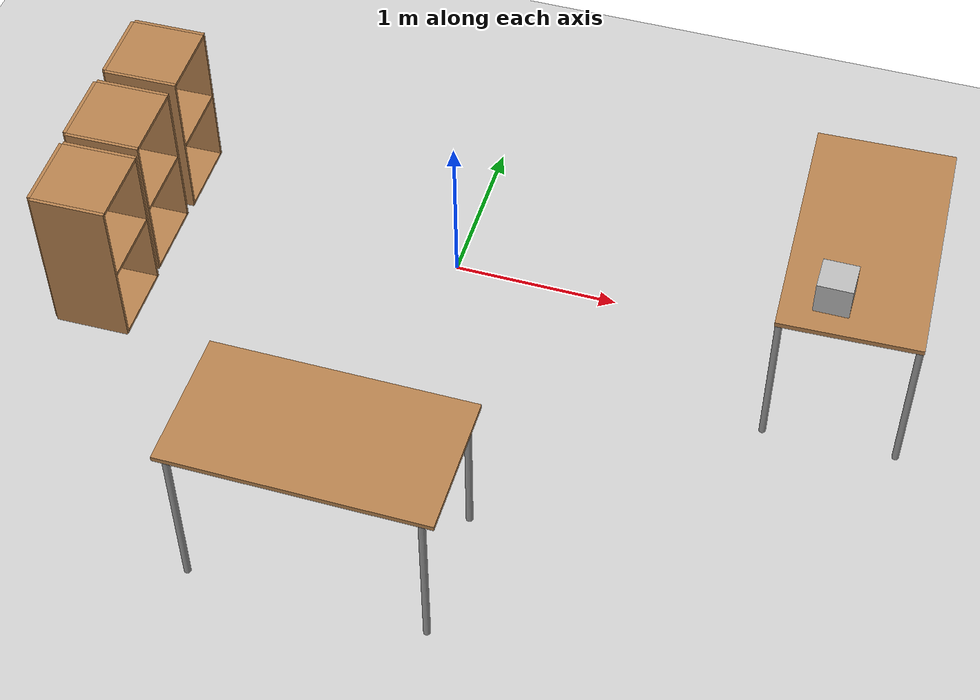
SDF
<sdf version="1.7">
 <world name="default">
  <light name="sun" type="directional">
   <pose>0 0 10 0 -0 0</pose>
   <diffuse>0.8 0.8 0.8 1</diffuse>
   <specular>0.2 0.2 0.2 1</specular>
   <attenuation>
    <range>1000</range>
    <constant>0.9</constant>
    <linear>0.01</linear>
    <quadratic>0.001</quadratic>
   </attenuation>
   <direction>-0.5 0.1 -0.9</direction>
   <spot><inner_angle>0</inner_angle><outer_angle>0</outer_angle><falloff>0</falloff></spot>
  </light>
  <model name="ground_plane">
   <static>1</static>
   <link name="link">
    <collision name="collision">
     <geometry><plane><normal>0 0 1</normal><size>100 100</size></plane></geometry>
     <surface><friction><ode><mu>100</mu><mu2>50</mu2></ode></friction></surface>
    </collision>
    <visual name="visual">
     <cast_shadows>0</cast_shadows>
     <geometry><plane><normal>0 0 1</normal><size>100 100</size></plane></geometry>
     <material>
      <script><uri>file://media/materials/scripts/gazebo.material</uri><name>Gazebo/Grey</name></script>
     </material>
    </visual>
   </link>
  </model>
  <gravity>0 0 -9.8</gravity>
  <magnetic_field>6e-06 2.3e-05 -4.2e-05</magnetic_field>
  <atmosphere type="adiabatic"/>
  <physics type="ode">
   <max_step_size>0.001</max_step_size>
   <real_time_factor>1</real_time_factor>
   <real_time_update_rate>1000</real_time_update_rate>
  </physics>
  <scene><ambient>0.4 0.4 0.4 1</ambient><background>0.7 0.7 0.7 1</background><shadows>0</shadows></scene>
  <audio><device>default</device></audio>
  <spherical_coordinates>
   <surface_model>EARTH_WGS84</surface_model>
   <latitude_deg>0</latitude_deg>
   <longitude_deg>0</longitude_deg>
   <elevation>0</elevation>
   <heading_deg>0</heading_deg>
  </spherical_coordinates>
  <model name="table">
   <static>1</static>
   <link name="link">
    <collision name="surface">
     <pose>0 0 1 0 -0 0</pose>
     <geometry><box><size>1.5 0.8 0.03</size></box></geometry>
     <surface><friction><ode><mu>0.6</mu><mu2>0.6</mu2></ode></friction></surface>
    </collision>
    <visual name="visual1">
     <pose>0 0 1 0 -0 0</pose>
     <geometry><box><size>1.5 0.8 0.03</size></box></geometry>
     <material>
      <script><uri>file://media/materials/scripts/gazebo.material</uri><name>Gazebo/Wood</name></script>
     </material>
    </visual>
    <collision name="front_left_leg">
     <pose>0.68 0.38 0.5 0 -0 0</pose>
     <geometry><cylinder><radius>0.02</radius><length>1</length></cylinder></geometry>
    </collision>
    <visual name="front_left_leg_visual">
     <pose>0.68 0.38 0.5 0 -0 0</pose>
     <geometry><cylinder><radius>0.02</radius><length>1</length></cylinder></geometry>
     <material>
      <script><uri>file://media/materials/scripts/gazebo.material</uri><name>Gazebo/Grey</name></script>
     </material>
    </visual>
    <collision name="front_right_leg">
     <pose>0.68 -0.38 0.5 0 -0 0</pose>
     <geometry><cylinder><radius>0.02</radius><length>1</length></cylinder></geometry>
    </collision>
    <visual name="front_right_leg_visual">
     <pose>0.68 -0.38 0.5 0 -0 0</pose>
     <geometry><cylinder><radius>0.02</radius><length>1</length></cylinder></geometry>
     <material>
      <script><uri>file://media/materials/scripts/gazebo.material</uri><name>Gazebo/Grey</name></script>
     </material>
    </visual>
    <collision name="back_right_leg">
     <pose>-0.68 -0.38 0.5 0 -0 0</pose>
     <geometry><cylinder><radius>0.02</radius><length>1</length></cylinder></geometry>
    </collision>
    <visual name="back_right_leg_visual">
     <pose>-0.68 -0.38 0.5 0 -0 0</pose>
     <geometry><cylinder><radius>0.02</radius><length>1</length></cylinder></geometry>
     <material>
      <script><uri>file://media/materials/scripts/gazebo.material</uri><name>Gazebo/Grey</name></script>
     </material>
    </visual>
    <collision name="back_left_leg">
     <pose>-0.68 0.38 0.5 0 -0 0</pose>
     <geometry><cylinder><radius>0.02</radius><length>1</length></cylinder></geometry>
    </collision>
    <visual name="back_left_leg_visual">
     <pose>-0.68 0.38 0.5 0 -0 0</pose>
     <geometry><cylinder><radius>0.02</radius><length>1</length></cylinder></geometry>
     <material>
      <script><uri>file://media/materials/scripts/gazebo.material</uri><name>Gazebo/Grey</name></script>
     </material>
    </visual>
   </link>
   <pose>-0.051203 -2.1438 0 0 -0 0</pose>
  </model>
  <model name="cabinet">
   <static>1</static>
   <link name="cabinet_bottom_plate">
    <inertial>
     <pose>0 0 -1 0 -0 0</pose>
     <inertia><ixx>2.05</ixx><ixy>0</ixy><ixz>0</ixz><iyy>2.05</iyy><iyz>0</iyz><izz>2.05</izz></inertia>
     <mass>25</mass>
    </inertial>
    <collision name="cabinet_bottom_plate_geom">
     <pose>0 0 0.01 0 -0 0</pose>
     <geometry><box><size>0.45 0.45 0.02</size></box></geometry>
    </collision>
    <visual name="cabinet_bottom_plate_geom_visual">
     <pose>0 0 0.01 0 -0 0</pose>
     <geometry><box><size>0.45 0.45 0.02</size></box></geometry>
     <material>
      <script><uri>file://media/materials/scripts/gazebo.material</uri><name>Gazebo/Wood</name></script>
     </material>
    </visual>
    <collision name="cabinet_bottom_plate_geom_cabinet_back_plate">
     <pose>0.235 0 0.51 0 -0 0</pose>
     <geometry><box><size>0.02 0.45 1.02</size></box></geometry>
    </collision>
    <visual name="cabinet_bottom_plate_geom_cabinet_back_plate_visual">
     <pose>0.235 0 0.51 0 -0 0</pose>
     <geometry><box><size>0.02 0.45 1.02</size></box></geometry>
     <material>
      <script><uri>file://media/materials/scripts/gazebo.material</uri><name>Gazebo/Wood</name></script>
     </material>
    </visual>
    <collision name="cabinet_bottom_plate_geom_cabinet_left_plate">
     <pose>0 0.235 0.51 0 -0 0</pose>
     <geometry><box><size>0.45 0.02 1.02</size></box></geometry>
    </collision>
    <visual name="cabinet_bottom_plate_geom_cabinet_left_plate_visual">
     <pose>0 0.235 0.51 0 -0 0</pose>
     <geometry><box><size>0.45 0.02 1.02</size></box></geometry>
     <material>
      <script><uri>file://media/materials/scripts/gazebo.material</uri><name>Gazebo/Wood</name></script>
     </material>
    </visual>
    <collision name="cabinet_bottom_plate_geom_cabinet_middle_plate">
     <pose>0 0 0.51 0 -0 0</pose>
     <geometry><box><size>0.45 0.45 0.02</size></box></geometry>
    </collision>
    <visual name="cabinet_bottom_plate_geom_cabinet_middle_plate_visual">
     <pose>0 0 0.51 0 -0 0</pose>
     <geometry><box><size>0.45 0.45 0.02</size></box></geometry>
     <material>
      <script><uri>file://media/materials/scripts/gazebo.material</uri><name>Gazebo/Wood</name></script>
     </material>
    </visual>
    <collision name="cabinet_bottom_plate_geom_cabinet_right_plate">
     <pose>0 -0.235 0.51 0 -0 0</pose>
     <geometry><box><size>0.45 0.02 1.02</size></box></geometry>
    </collision>
    <visual name="cabinet_bottom_plate_geom_cabinet_right_plate_visual">
     <pose>0 -0.235 0.51 0 -0 0</pose>
     <geometry><box><size>0.45 0.02 1.02</size></box></geometry>
     <material>
      <script><uri>file://media/materials/scripts/gazebo.material</uri><name>Gazebo/Wood</name></script>
     </material>
    </visual>
    <collision name="cabinet_bottom_plate_geom_cabinet_top_plate">
     <pose>0 0 1.01 0 -0 0</pose>
     <geometry><box><size>0.45 0.45 0.02</size></box></geometry>
    </collision>
    <visual name="cabinet_bottom_plate_geom_cabinet_top_plate_visual">
     <pose>0 0 1.01 0 -0 0</pose>
     <geometry><box><size>0.45 0.45 0.02</size></box></geometry>
     <material>
      <script><uri>file://media/materials/scripts/gazebo.material</uri><name>Gazebo/Wood</name></script>
     </material>
    </visual>
   </link>
   <pose>-1.96913 0.26782 0 0 0 -3.12336</pose>
  </model>
  <model name="table_0">
   <static>1</static>
   <link name="link">
    <collision name="surface">
     <pose>0 0 1 0 -0 0</pose>
     <geometry><box><size>1.5 0.8 0.03</size></box></geometry>
     <surface><friction><ode><mu>0.6</mu><mu2>0.6</mu2></ode></friction></surface>
    </collision>
    <visual name="visual1">
     <pose>0 0 1 0 -0 0</pose>
     <geometry><box><size>1.5 0.8 0.03</size></box></geometry>
     <material>
      <script><uri>file://media/materials/scripts/gazebo.material</uri><name>Gazebo/Wood</name></script>
     </material>
    </visual>
    <collision name="front_left_leg">
     <pose>0.68 0.38 0.5 0 -0 0</pose>
     <geometry><cylinder><radius>0.02</radius><length>1</length></cylinder></geometry>
    </collision>
    <visual name="front_left_leg_visual">
     <pose>0.68 0.38 0.5 0 -0 0</pose>
     <geometry><cylinder><radius>0.02</radius><length>1</length></cylinder></geometry>
     <material>
      <script><uri>file://media/materials/scripts/gazebo.material</uri><name>Gazebo/Grey</name></script>
     </material>
    </visual>
    <collision name="front_right_leg">
     <pose>0.68 -0.38 0.5 0 -0 0</pose>
     <geometry><cylinder><radius>0.02</radius><length>1</length></cylinder></geometry>
    </collision>
    <visual name="front_right_leg_visual">
     <pose>0.68 -0.38 0.5 0 -0 0</pose>
     <geometry><cylinder><radius>0.02</radius><length>1</length></cylinder></geometry>
     <material>
      <script><uri>file://media/materials/scripts/gazebo.material</uri><name>Gazebo/Grey</name></script>
     </material>
    </visual>
    <collision name="back_right_leg">
     <pose>-0.68 -0.38 0.5 0 -0 0</pose>
     <geometry><cylinder><radius>0.02</radius><length>1</length></cylinder></geometry>
    </collision>
    <visual name="back_right_leg_visual">
     <pose>-0.68 -0.38 0.5 0 -0 0</pose>
     <geometry><cylinder><radius>0.02</radius><length>1</length></cylinder></geometry>
     <material>
      <script><uri>file://media/materials/scripts/gazebo.material</uri><name>Gazebo/Grey</name></script>
     </material>
    </visual>
    <collision name="back_left_leg">
     <pose>-0.68 0.38 0.5 0 -0 0</pose>
     <geometry><cylinder><radius>0.02</radius><length>1</length></cylinder></geometry>
    </collision>
    <visual name="back_left_leg_visual">
     <pose>-0.68 0.38 0.5 0 -0 0</pose>
     <geometry><cylinder><radius>0.02</radius><length>1</length></cylinder></geometry>
     <material>
      <script><uri>file://media/materials/scripts/gazebo.material</uri><name>Gazebo/Grey</name></script>
     </material>
    </visual>
   </link>
   <pose>2.40504 -0.003791 0 0 -0 1.60486</pose>
  </model>
  <model name="cabinet_clone">
   <static>1</static>
   <link name="cabinet_bottom_plate">
    <inertial>
     <pose>0 0 -1 0 -0 0</pose>
     <inertia><ixx>2.05</ixx><ixy>0</ixy><ixz>0</ixz><iyy>2.05</iyy><iyz>0</iyz><izz>2.05</izz></inertia>
     <mass>25</mass>
    </inertial>
    <collision name="cabinet_bottom_plate_geom">
     <pose>0 0 0.01 0 -0 0</pose>
     <geometry><box><size>0.45 0.45 0.02</size></box></geometry>
    </collision>
    <visual name="cabinet_bottom_plate_geom_visual">
     <pose>0 0 0.01 0 -0 0</pose>
     <geometry><box><size>0.45 0.45 0.02</size></box></geometry>
     <material>
      <script><uri>file://media/materials/scripts/gazebo.material</uri><name>Gazebo/Wood</name></script>
     </material>
    </visual>
    <collision name="cabinet_bottom_plate_geom_cabinet_back_plate">
     <pose>0.235 0 0.51 0 -0 0</pose>
     <geometry><box><size>0.02 0.45 1.02</size></box></geometry>
    </collision>
    <visual name="cabinet_bottom_plate_geom_cabinet_back_plate_visual">
     <pose>0.235 0 0.51 0 -0 0</pose>
     <geometry><box><size>0.02 0.45 1.02</size></box></geometry>
     <material>
      <script><uri>file://media/materials/scripts/gazebo.material</uri><name>Gazebo/Wood</name></script>
     </material>
    </visual>
    <collision name="cabinet_bottom_plate_geom_cabinet_left_plate">
     <pose>0 0.235 0.51 0 -0 0</pose>
     <geometry><box><size>0.45 0.02 1.02</size></box></geometry>
    </collision>
    <visual name="cabinet_bottom_plate_geom_cabinet_left_plate_visual">
     <pose>0 0.235 0.51 0 -0 0</pose>
     <geometry><box><size>0.45 0.02 1.02</size></box></geometry>
     <material>
      <script><uri>file://media/materials/scripts/gazebo.material</uri><name>Gazebo/Wood</name></script>
     </material>
    </visual>
    <collision name="cabinet_bottom_plate_geom_cabinet_middle_plate">
     <pose>0 0 0.51 0 -0 0</pose>
     <geometry><box><size>0.45 0.45 0.02</size></box></geometry>
    </collision>
    <visual name="cabinet_bottom_plate_geom_cabinet_middle_plate_visual">
     <pose>0 0 0.51 0 -0 0</pose>
     <geometry><box><size>0.45 0.45 0.02</size></box></geometry>
     <material>
      <script><uri>file://media/materials/scripts/gazebo.material</uri><name>Gazebo/Wood</name></script>
     </material>
    </visual>
    <collision name="cabinet_bottom_plate_geom_cabinet_right_plate">
     <pose>0 -0.235 0.51 0 -0 0</pose>
     <geometry><box><size>0.45 0.02 1.02</size></box></geometry>
    </collision>
    <visual name="cabinet_bottom_plate_geom_cabinet_right_plate_visual">
     <pose>0 -0.235 0.51 0 -0 0</pose>
     <geometry><box><size>0.45 0.02 1.02</size></box></geometry>
     <material>
      <script><uri>file://media/materials/scripts/gazebo.material</uri><name>Gazebo/Wood</name></script>
     </material>
    </visual>
    <collision name="cabinet_bottom_plate_geom_cabinet_top_plate">
     <pose>0 0 1.01 0 -0 0</pose>
     <geometry><box><size>0.45 0.45 0.02</size></box></geometry>
    </collision>
    <visual name="cabinet_bottom_plate_geom_cabinet_top_plate_visual">
     <pose>0 0 1.01 0 -0 0</pose>
     <geometry><box><size>0.45 0.45 0.02</size></box></geometry>
     <material>
      <script><uri>file://media/materials/scripts/gazebo.material</uri><name>Gazebo/Wood</name></script>
     </material>
    </visual>
   </link>
   <pose>-1.96864 -0.292581 0 0 0 -3.12336</pose>
  </model>
  <model name="cabinet_clone_0">
   <static>1</static>
   <link name="cabinet_bottom_plate">
    <inertial>
     <pose>0 0 -1 0 -0 0</pose>
     <inertia><ixx>2.05</ixx><ixy>0</ixy><ixz>0</ixz><iyy>2.05</iyy><iyz>0</iyz><izz>2.05</izz></inertia>
     <mass>25</mass>
    </inertial>
    <collision name="cabinet_bottom_plate_geom">
     <pose>0 0 0.01 0 -0 0</pose>
     <geometry><box><size>0.45 0.45 0.02</size></box></geometry>
    </collision>
    <visual name="cabinet_bottom_plate_geom_visual">
     <pose>0 0 0.01 0 -0 0</pose>
     <geometry><box><size>0.45 0.45 0.02</size></box></geometry>
     <material>
      <script><uri>file://media/materials/scripts/gazebo.material</uri><name>Gazebo/Wood</name></script>
     </material>
    </visual>
    <collision name="cabinet_bottom_plate_geom_cabinet_back_plate">
     <pose>0.235 0 0.51 0 -0 0</pose>
     <geometry><box><size>0.02 0.45 1.02</size></box></geometry>
    </collision>
    <visual name="cabinet_bottom_plate_geom_cabinet_back_plate_visual">
     <pose>0.235 0 0.51 0 -0 0</pose>
     <geometry><box><size>0.02 0.45 1.02</size></box></geometry>
     <material>
      <script><uri>file://media/materials/scripts/gazebo.material</uri><name>Gazebo/Wood</name></script>
     </material>
    </visual>
    <collision name="cabinet_bottom_plate_geom_cabinet_left_plate">
     <pose>0 0.235 0.51 0 -0 0</pose>
     <geometry><box><size>0.45 0.02 1.02</size></box></geometry>
    </collision>
    <visual name="cabinet_bottom_plate_geom_cabinet_left_plate_visual">
     <pose>0 0.235 0.51 0 -0 0</pose>
     <geometry><box><size>0.45 0.02 1.02</size></box></geometry>
     <material>
      <script><uri>file://media/materials/scripts/gazebo.material</uri><name>Gazebo/Wood</name></script>
     </material>
    </visual>
    <collision name="cabinet_bottom_plate_geom_cabinet_middle_plate">
     <pose>0 0 0.51 0 -0 0</pose>
     <geometry><box><size>0.45 0.45 0.02</size></box></geometry>
    </collision>
    <visual name="cabinet_bottom_plate_geom_cabinet_middle_plate_visual">
     <pose>0 0 0.51 0 -0 0</pose>
     <geometry><box><size>0.45 0.45 0.02</size></box></geometry>
     <material>
      <script><uri>file://media/materials/scripts/gazebo.material</uri><name>Gazebo/Wood</name></script>
     </material>
    </visual>
    <collision name="cabinet_bottom_plate_geom_cabinet_right_plate">
     <pose>0 -0.235 0.51 0 -0 0</pose>
     <geometry><box><size>0.45 0.02 1.02</size></box></geometry>
    </collision>
    <visual name="cabinet_bottom_plate_geom_cabinet_right_plate_visual">
     <pose>0 -0.235 0.51 0 -0 0</pose>
     <geometry><box><size>0.45 0.02 1.02</size></box></geometry>
     <material>
      <script><uri>file://media/materials/scripts/gazebo.material</uri><name>Gazebo/Wood</name></script>
     </material>
    </visual>
    <collision name="cabinet_bottom_plate_geom_cabinet_top_plate">
     <pose>0 0 1.01 0 -0 0</pose>
     <geometry><box><size>0.45 0.45 0.02</size></box></geometry>
    </collision>
    <visual name="cabinet_bottom_plate_geom_cabinet_top_plate_visual">
     <pose>0 0 1.01 0 -0 0</pose>
     <geometry><box><size>0.45 0.45 0.02</size></box></geometry>
     <material>
      <script><uri>file://media/materials/scripts/gazebo.material</uri><name>Gazebo/Wood</name></script>
     </material>
    </visual>
   </link>
   <pose>-1.94141 -0.831564 0 0 0 -3.12336</pose>
  </model>
  <include>
   <uri>model://aruco_marker</uri>
   <name>calibration_target</name>
   <pose>2.304600 -0.523466 1.115084 0 0 0</pose>
  </include>
  <plugin name="gazebo_ros_state" filename="libgazebo_ros_state.so">
   <ros>
    <namespace>/ros2_grasp</namespace>
    <argument>model_states:=model_states</argument>
    <argument>link_states:=link_states</argument>
   </ros>
   <update_rate>1.0</update_rate>
  </plugin>
  <plugin name="gazebo_ros_properties" filename="libgazebo_ros_properties.so">
   <ros><namespace>/ros2_grasp</namespace></ros>
  </plugin>
 </world>
</sdf>

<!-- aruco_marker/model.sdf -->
<sdf version="1.5">
  <model name="aruco_box">
    <static>false</static>
    <link name="link">
      <inertial>
        <mass>0.1</mass>
      </inertial>
      <collision name="collision">
        <geometry>
          <box>
            <size>0.2 0.2 0.2</size> </box>
        </geometry>
      </collision>
      <visual name="visual">
        <geometry>
          <box>
            <size>0.2 0.2 0.2</size>
          </box>
        </geometry>
        <material>
          <script>
            <uri>model://aruco_marker/materials/scripts</uri>
            <uri>model://aruco_marker/materials/textures</uri>
            <name>Aruco/Marker</name>
          </script>
        </material>
      </visual>
    </link>
  </model>
</sdf>
